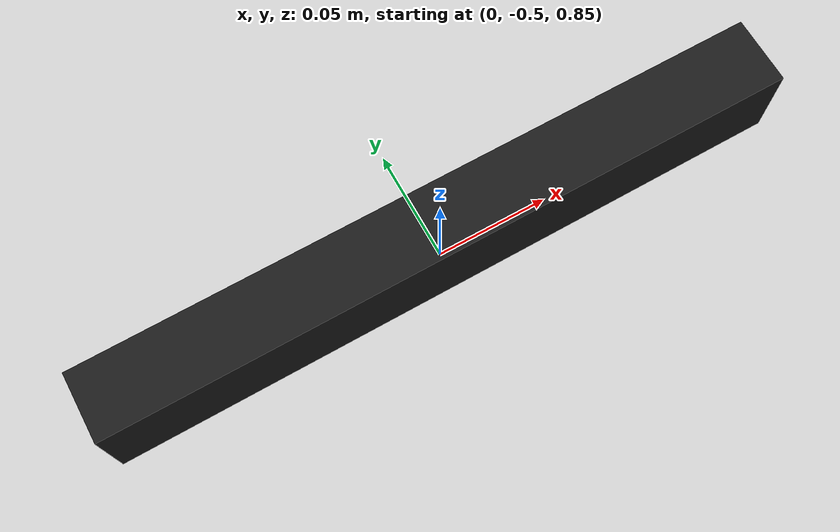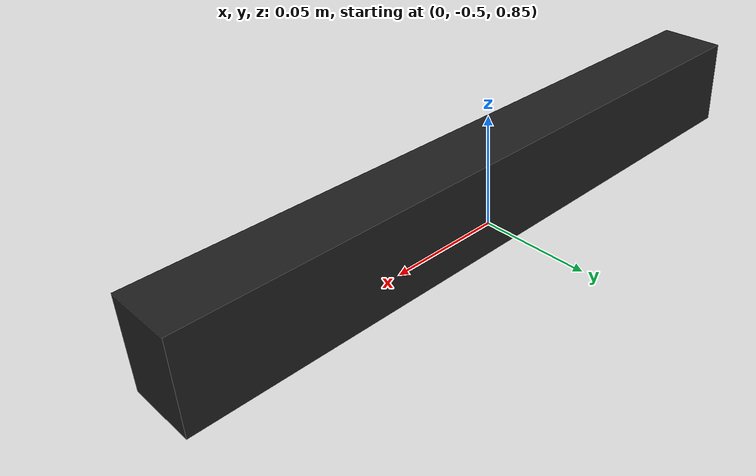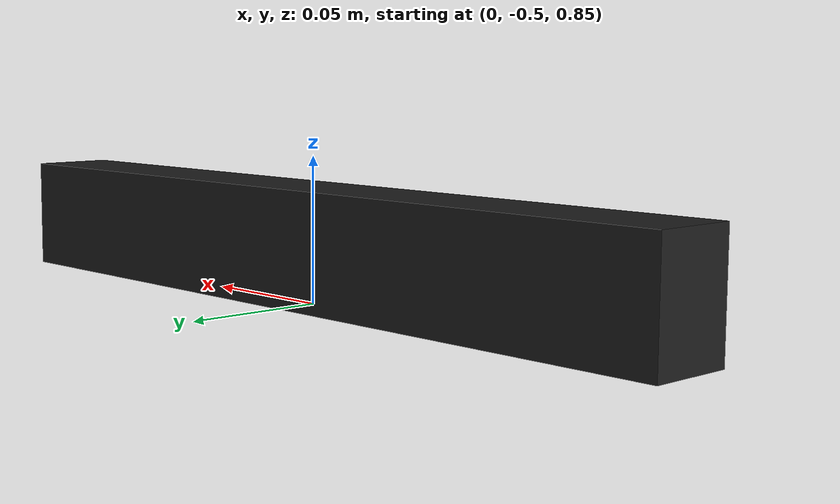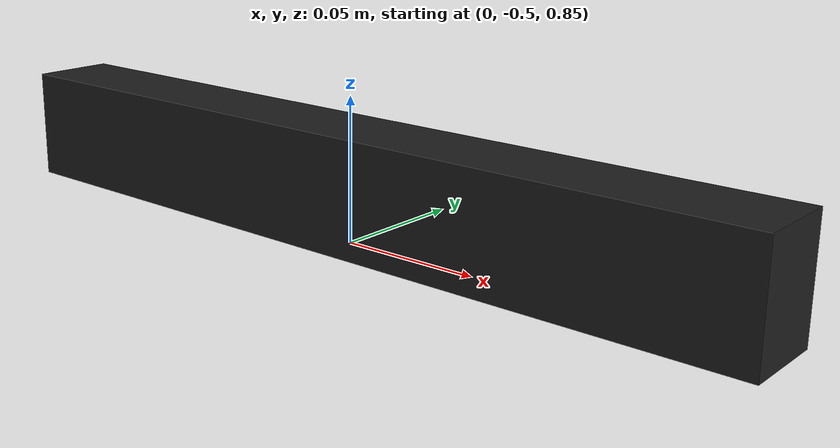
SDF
<?xml version='1.0'?>
<sdf version='1.6'>
  <model name='tool2'>
    <link name="handle">
    	<pose>0 -0.5 0.87 0 0 0</pose>
      <inertial>
        <mass>0.001</mass>
        <inertia>
          <ixx>0.0002</ixx>
          <iyy>0.0002</iyy>
          <izz>0.0002</izz>
        </inertia>
      </inertial>
      <visual name='visual_handle'>
        <geometry>
          <box>
            <size>0.3 0.03 0.04</size>
          </box>
        </geometry>
        <material>
          <script>
            <uri>file://media/materials/scripts/gazebo.material</uri>
            <name>Gazebo/Black</name>
          </script>
        </material>
      </visual>
      <collision name='collision_handle'>
        <geometry>
          <box>
            <size>0.3 0.03 0.04</size>
          </box>
        </geometry>
        <surface>
         <friction>
            <ode>
              <mu>5000</mu>
              <mu2>5000</mu2>
              <fdir1>0 0 0</fdir1>
              <slip1>0</slip1>
              <slip2>0</slip2>
            </ode>
            <torsional>
              <coefficient>1000000</coefficient>
            </torsional>
          </friction>
          <contact>
            <ode>
              <kp>1e+13</kp>
              <kd>1000000</kd>
              <max_vel>0</max_vel>
              <min_depth>0.002</min_depth>
            </ode>
            <bullet>
              <kp>1e+13</kp>
              <kd>1000000</kd>
            </bullet>
          </contact>
        </surface>
      </collision>
    </link>

</model>
</sdf>
